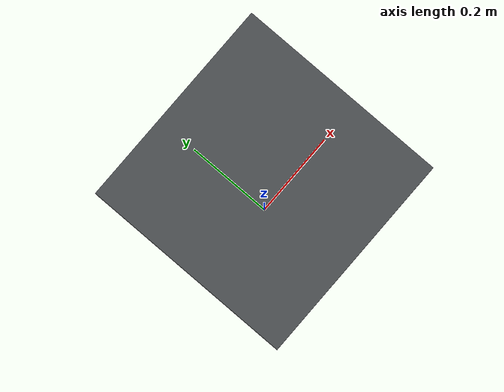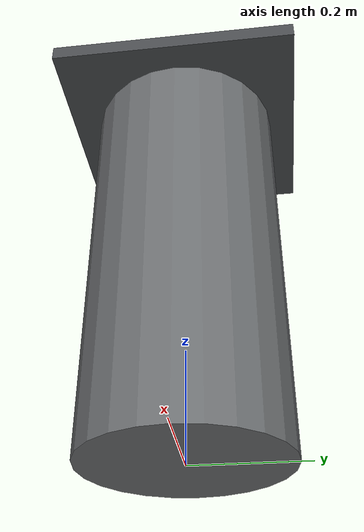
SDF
<?xml version="1.0"?>
<sdf version="1.9">
  <model name="robot_pedestal">
    <static>true</static>
    <link name="pedestal_link">
      <!-- 0.75 m static stand: its top supports the KUKA base at table-surface height. -->
      <collision name="column_collision">
        <pose>0 0 0.36 0 0 0</pose>
        <geometry>
          <cylinder>
            <radius>0.18</radius>
            <length>0.72</length>
          </cylinder>
        </geometry>
        <surface>
          <friction><ode><mu>0.9</mu><mu2>0.9</mu2></ode></friction>
        </surface>
      </collision>
      <visual name="column_visual">
        <pose>0 0 0.36 0 0 0</pose>
        <geometry>
          <cylinder>
            <radius>0.18</radius>
            <length>0.72</length>
          </cylinder>
        </geometry>
        <material>
          <ambient>0.30 0.31 0.32 1</ambient>
          <diffuse>0.42 0.43 0.44 1</diffuse>
          <specular>0.20 0.20 0.20 1</specular>
        </material>
      </visual>

      <collision name="top_plate_collision">
        <pose>0 0 0.735 0 0 0</pose>
        <geometry><box><size>0.46 0.46 0.03</size></box></geometry>
      </collision>
      <visual name="top_plate_visual">
        <pose>0 0 0.735 0 0 0</pose>
        <geometry><box><size>0.46 0.46 0.03</size></box></geometry>
        <material>
          <ambient>0.20 0.21 0.22 1</ambient>
          <diffuse>0.28 0.29 0.30 1</diffuse>
          <specular>0.25 0.25 0.25 1</specular>
        </material>
      </visual>
    </link>
  </model>
</sdf>
